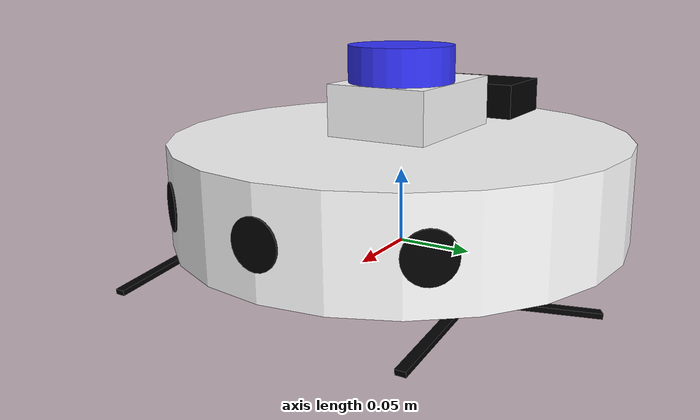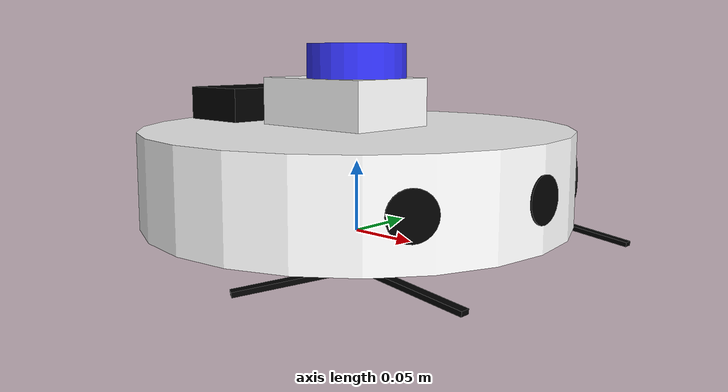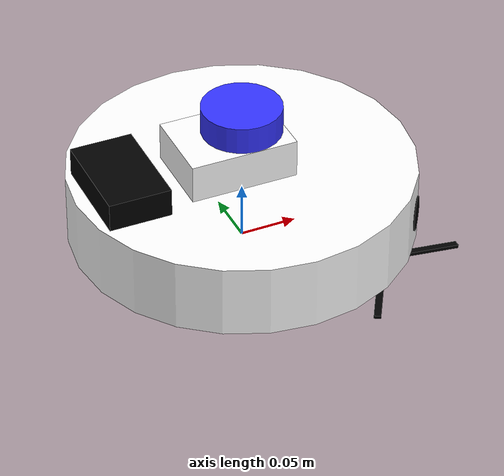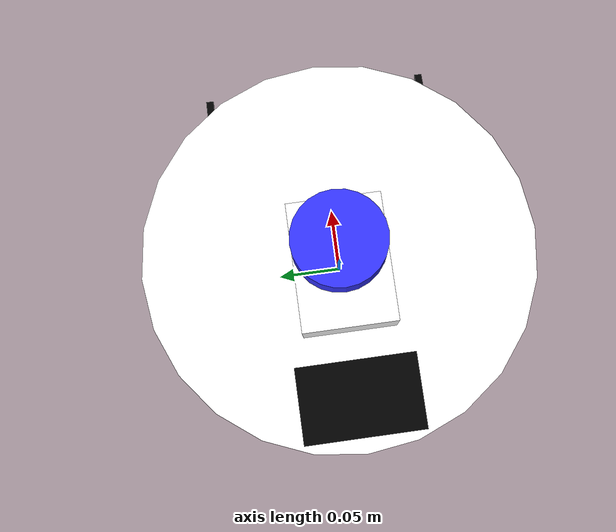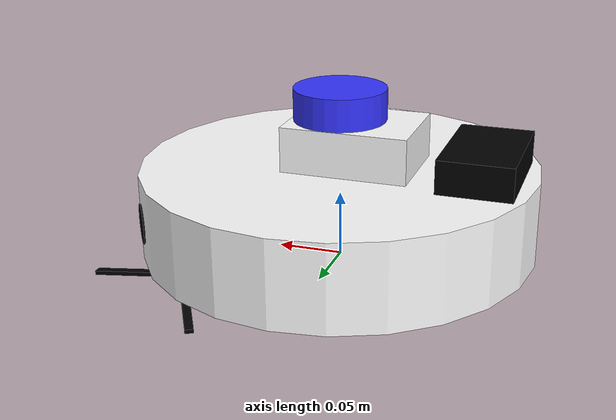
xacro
<?xml version="1.0"?>
<robot xmlns:xacro="http://www.ros.org/wiki/xacro"  name="robot">

    <!-- PARAMETERS -->
    <xacro:arg name="sim_mode" default="true"/>

    <!-- INCLUDES -->
    <xacro:include filename="inertial_macros.xacro"/>
    <xacro:include filename="materials.xacro"/>
    <xacro:include filename="robot_core.xacro"/>
    <xacro:include filename="sweeper.xacro"/>
    <xacro:include filename="range_sensors.xacro"/>
    <xacro:include filename="lidar.xacro"/>
    <xacro:include filename="raspberry_pi.xacro"/>
    <xacro:include filename="ros2_control.xacro"/>
    <xacro:include filename="gazebo.xacro"/>

</robot>

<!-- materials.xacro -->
<robot xmlns:xacro="http://www.ros.org/wiki/xacro">

    <material name="white">
        <color rgba="1 1 1 1" />
    </material>

    <material name="orange">
        <color rgba="1 0.3 0.1 1"/>
    </material>

    <material name="blue">
        <color rgba="0.2 0.2 1 1"/>
    </material>

    <material name="black">
        <color rgba="0 0 0 1"/>
    </material>

</robot>

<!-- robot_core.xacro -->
<robot xmlns:xacro="http://www.ros.org/wiki/xacro">

    <!-- BASE LINK -->
    <!-- defined on the ground in the center of the robot-->
    <link name="base_link"></link>

    <!-- BASE_FOOTPRINT LINK -->
    <joint name="base_footprint_joint" type="fixed">
        <parent link="base_link"/>
        <child link="base_footprint"/>
        <origin xyz="0 0 0" rpy="0 0 0"/>
    </joint>

    <link name="base_footprint">
    </link>

    <!-- CHASSIS LINK -->
    <xacro:property name="chassis_radius" value="0.150"/>
    <xacro:property name="chassis_thickness" value="0.065"/>
    <xacro:property name="chassis_mass" value="2.000"/>
    <xacro:property name="chassis_color" value="white"/>

    <xacro:property name="chassis_offset_z" value="0.0425"/>

    <joint name="chassis_joint" type="fixed">
        <parent link="base_link"/>
        <child link="chassis"/>
        <origin xyz="0 0 ${chassis_offset_z}"/>
    </joint>

    <link name="chassis">
        <visual>
            <origin xyz="0 0 0"/>
            <geometry>
                <cylinder radius="${chassis_radius}" length="${chassis_thickness}"/>
            </geometry>
            <material name="${chassis_color}"/>
        </visual>
        <collision>
            <origin xyz="0 0 0"/>
            <geometry>
                <cylinder radius="${chassis_radius}" length="${chassis_thickness}"/>
            </geometry>
        </collision>
        <xacro:inertial_cylinder mass="${chassis_mass}" radius="${chassis_radius}" length="${chassis_thickness}">
            <origin xyz="0.01 0 0" rpy="0 0 0"/>
        </xacro:inertial_cylinder>
    </link>

    <!-- LEFT WHEEL LINK -->
    <xacro:property name="wheel_radius" value="0.0325"/>
    <xacro:property name="wheel_thickness" value="0.015"/>
    <xacro:property name="wheel_mass" value="0.030"/>
    <xacro:property name="wheel_color" value="black"/>

    <xacro:property name="wheel_offset_x" value="0"/>
    <xacro:property name="wheel_separation" value="0.231"/>

    <joint name="wheel_left_joint" type="continuous">
        <parent link="base_link"/>
        <child link="wheel_left"/>
        <origin xyz="${wheel_offset_x} ${wheel_separation/2} ${wheel_radius}" rpy="-${pi/2} 0 0" />
        <axis xyz="0 0 1"/>
    </joint>

    <link name="wheel_left">
        <visual>
            <geometry>
                <cylinder radius="${wheel_radius}" length="${wheel_thickness}"/>
            </geometry>
            <material name="${wheel_color}"/>
        </visual>
        <collision>
            <geometry>
                <cylinder radius="${wheel_radius}" length="${wheel_thickness}"/>
            </geometry>
        </collision>
        <xacro:inertial_cylinder mass="${wheel_mass}" radius="${wheel_radius}" length="${wheel_thickness}">
            <origin xyz="0 0 0" rpy="0 0 0"/>
        </xacro:inertial_cylinder>
    </link>

    <!-- RIGHT WHEEL LINK -->
    <joint name="wheel_right_joint" type="continuous">
        <parent link="base_link"/>
        <child link="wheel_right"/>
        <origin xyz="${wheel_offset_x} ${-wheel_separation/2} ${wheel_radius}" rpy="${pi/2} 0 0" />
        <axis xyz="0 0 -1"/>
    </joint>

    <link name="wheel_right">
        <visual>
            <geometry>
                <cylinder radius="${wheel_radius}" length="${wheel_thickness}"/>
            </geometry>
            <material name="${wheel_color}"/>
        </visual>
        <collision>
            <geometry>
                <cylinder radius="${wheel_radius}" length="${wheel_thickness}"/>
            </geometry>
        </collision>
        <xacro:inertial_cylinder mass="${wheel_mass}" radius="${wheel_radius}" length="${wheel_thickness}">
            <origin xyz="0 0 0" rpy="0 0 0"/>
        </xacro:inertial_cylinder>
    </link>

    <!-- CASTER WHEEL PLATE LINK -->
    <xacro:property name="caster_wheel_plate_radius" value="0.025"/>
    <xacro:property name="caster_wheel_plate_thickness" value="0.0001"/>
    <xacro:property name="caster_wheel_plate_mass" value="0.005"/>
    <xacro:property name="caster_wheel_plate_color" value="blue"/>

    <xacro:property name="caster_wheel_plate_offset_x" value="0.1"/>

    <joint name="caster_wheel_plate_joint" type="fixed">0
        <parent link="chassis"/>
        <child link="caster_wheel_plate"/>
        <origin xyz="${caster_wheel_plate_offset_x} 0 ${-chassis_thickness/2}"/>
        <axis xyz="0 0 -1"/>
    </joint>

    <link name="caster_wheel_plate">
        <visual>
            <origin xyz="0 0 ${-caster_wheel_plate_thickness/2}"/>
            <geometry>
                <cylinder radius="${caster_wheel_plate_radius}" length="${caster_wheel_plate_thickness}"/>
            </geometry>
            <material name="${caster_wheel_plate_color}"/>
        </visual>
        <collision>
            <geometry>
                <cylinder radius="${caster_wheel_plate_radius}" length="${caster_wheel_plate_thickness}"/>
            </geometry>
        </collision>
        <xacro:inertial_cylinder mass="${caster_wheel_plate_mass}" radius="${caster_wheel_plate_radius}" length="${caster_wheel_plate_thickness}">
            <origin xyz="0 0 0" rpy="0 0 0"/>
        </xacro:inertial_cylinder>
    </link>

    <!-- CASTER WHEEL LINK -->
    <xacro:property name="caster_wheel_radius" value="0.010"/>
    <xacro:property name="caster_wheel_thickness" value="0.020"/>
    <xacro:property name="caster_wheel_mass" value="0.015"/>
    <xacro:property name="caster_wheel_color" value="blue"/>

    <xacro:property name="caster_wheel_offset_x" value="0.008"/>

    <joint name="caster_wheel_joint" type="fixed">
        <parent link="caster_wheel_plate"/>
        <child link="caster_wheel"/>
        <origin xyz="${caster_wheel_offset_x} 0 0" rpy="${pi/2}  0 0" />
        <axis xyz="0 0 -1"/>
    </joint>

    <link name="caster_wheel">
        <visual>
            <geometry>
                <cylinder radius="${caster_wheel_radius}" length="${caster_wheel_thickness}"/>
            </geometry>
            <material name="${caster_wheel_color}"/>
        </visual>
        <collision>
            <geometry>
                <cylinder radius="${caster_wheel_radius}" length="${caster_wheel_thickness}"/>
            </geometry>
        </collision>
        <xacro:inertial_cylinder mass="${caster_wheel_mass}" radius="${caster_wheel_radius}" length="${caster_wheel_thickness}">
            <origin xyz="0 0 0" rpy="0 0 0"/>
        </xacro:inertial_cylinder>
    </link>

</robot>

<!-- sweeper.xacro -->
<robot xmlns:xacro="http://www.ros.org/wiki/xacro">

    <!-- SWEEPER LEFT LINK -->
    <xacro:property name="sweeper_plate_radius" value="0.0125"/>
    <xacro:property name="sweeper_plate_thickness" value="0.0001"/>
    <xacro:property name="sweeper_plate_mass" value="0.0055"/>
    <xacro:property name="sweeper_brush_length" value="0.071"/>
    <xacro:property name="sweeper_brush_width" value="0.006"/>
    <xacro:property name="sweeper_brush_height" value="0.003"/>
    <xacro:property name="sweeper_brush_angle" value="7"/>
    <xacro:property name="sweeper_brush_mass" value="0.0055"/>
    <xacro:property name="sweeper_color" value="black"/>

    <xacro:property name="sweeper_offset_x" value="0.09"/>
    <xacro:property name="sweeper_separation" value="0.1825"/>

    <joint name="sweeper_left_joint" type="continuous">
        <parent link="chassis"/>
        <child link="sweeper_left"/>
        <origin xyz="${sweeper_offset_x} ${sweeper_separation/2} ${-chassis_thickness/2 - sweeper_plate_thickness/2}"/>
        <axis xyz="0 0 -1"/>
    </joint>

    <link name="sweeper_left">
        <visual>
            <geometry>
                <cylinder radius="${sweeper_plate_radius}" length="${sweeper_plate_thickness}"/>
            </geometry>
            <material name="${sweeper_color}"/>
        </visual>
        <visual>
            <origin xyz="${sweeper_brush_length/2 * cos( 0 )}
                         ${sweeper_brush_length/2 * sin( 0 )}
                         ${-(sweeper_brush_length/2 * sin(radians( sweeper_brush_angle )))}"
                    rpy="0
                         ${radians( sweeper_brush_angle )}
                         0" />
            <geometry>
                <box size="${sweeper_brush_length} ${sweeper_brush_width} ${sweeper_brush_height}"/>
            </geometry>
            <material name="${sweeper_color}"/>
        </visual>
        <visual>
            <origin xyz="${sweeper_brush_length/2 * cos( 2/3 * pi )}
                         ${sweeper_brush_length/2 * sin( 2/3 * pi )}
                         ${-(sweeper_brush_length/2 * sin(radians( sweeper_brush_angle )))}"
                    rpy="0
                         ${radians( sweeper_brush_angle )}
                         ${ 2/3 * pi }" />
            <geometry>
                <box size="${sweeper_brush_length} ${sweeper_brush_width} ${sweeper_brush_height}"/>
            </geometry>
            <material name="${sweeper_color}"/>
        </visual>
        <visual>
            <origin xyz="${sweeper_brush_length/2 * cos( -2/3 * pi )}
                         ${sweeper_brush_length/2 * sin( -2/3 * pi )}
                         ${-(sweeper_brush_length/2 * sin(radians( sweeper_brush_angle )))}"
                    rpy="0
                         ${radians( sweeper_brush_angle )}
                         ${ -2/3 * pi }" />
            <geometry>
                <box size="${sweeper_brush_length} ${sweeper_brush_width} ${sweeper_brush_height}"/>
            </geometry>
            <material name="${sweeper_color}"/>
        </visual>
        <xacro:inertial_cylinder mass="${sweeper_brush_mass}" radius="${sweeper_plate_radius}" length="${sweeper_plate_thickness}">
            <origin xyz="0 0 0" rpy="0 0 0"/>
        </xacro:inertial_cylinder>
    </link>

    <!-- SWEEPER RIGHT LINK -->
    <joint name="sweeper_right_joint" type="continuous">
        <parent link="chassis"/>
        <child link="sweeper_right"/>
        <origin xyz="${sweeper_offset_x} -${sweeper_separation/2} ${-chassis_thickness/2 - sweeper_plate_thickness/2}"/>
        <axis xyz="0 0 -1"/>
    </joint>

    <link name="sweeper_right">
        <visual>
            <geometry>
                <cylinder radius="${sweeper_plate_radius}" length="${sweeper_plate_thickness}"/>
            </geometry>
            <material name="${sweeper_color}"/>
        </visual>
        <visual>
            <origin xyz="${sweeper_brush_length/2 * cos( 0 )}
                         ${sweeper_brush_length/2 * sin( 0 )}
                         ${-(sweeper_brush_length/2 * sin(radians( sweeper_brush_angle )))}"
                    rpy="0
                         ${radians( sweeper_brush_angle )}
                         0" />
            <geometry>
                <box size="${sweeper_brush_length} ${sweeper_brush_width} ${sweeper_brush_height}"/>
            </geometry>
            <material name="${sweeper_color}"/>
        </visual>
        <visual>
            <origin xyz="${sweeper_brush_length/2 * cos( 2/3 * pi )}
                         ${sweeper_brush_length/2 * sin( 2/3 * pi )}
                         ${-(sweeper_brush_length/2 * sin(radians( sweeper_brush_angle )))}"
                    rpy="0
                         ${radians( sweeper_brush_angle )}
                         ${ 2/3 * pi }" />
            <geometry>
                <box size="${sweeper_brush_length} ${sweeper_brush_width} ${sweeper_brush_height}"/>
            </geometry>
            <material name="${sweeper_color}"/>
        </visual>
        <visual>
            <origin xyz="${sweeper_brush_length/2 * cos( -2/3 * pi )}
                         ${sweeper_brush_length/2 * sin( -2/3 * pi )}
                         ${-(sweeper_brush_length/2 * sin(radians( sweeper_brush_angle )))}"
                    rpy="0
                         ${radians( sweeper_brush_angle )}
                         ${ -2/3 * pi }" />
            <geometry>
                <box size="${sweeper_brush_length} ${sweeper_brush_width} ${sweeper_brush_height}"/>
            </geometry>
            <material name="${sweeper_color}"/>
        </visual>
        <xacro:inertial_cylinder mass="${sweeper_brush_mass}" radius="${sweeper_plate_radius}" length="${sweeper_plate_thickness}">
            <origin xyz="0 0 0" rpy="0 0 0"/>
        </xacro:inertial_cylinder>
    </link>

</robot>

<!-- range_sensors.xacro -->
<robot xmlns:xacro="http://www.ros.org/wiki/xacro">

    <xacro:property name="range_sensor_radius" value="0.015"/>
    <xacro:property name="range_sensor_thickness" value="0.001"/>
    <xacro:property name="range_sensor_mass" value="0.1"/>
    <xacro:property name="range_sensor_color" value="black"/>

    <!-- RANGE SENSOR LEFT LINK -->

    <xacro:property name="range_sensor_left_angle" value="35"/>

    <joint name="range_sensor_left_joint" type="fixed">
        <parent link="chassis"/>
        <child link="range_sensor_left"/>
        <origin xyz="${chassis_radius * cos( radians( range_sensor_left_angle ) )}
                     ${chassis_radius * sin( radians( range_sensor_left_angle ) )}
                     0"
                rpy="0 0 ${radians( range_sensor_left_angle )}"/>
    </joint>

    <link name="range_sensor_left">
        <visual>
            <origin xyz="0 0 0" rpy="0 -${pi/2} 0"/>
            <geometry>
                <cylinder radius="${range_sensor_radius}" length="${range_sensor_thickness}"/>
            </geometry>
            <material name="${range_sensor_color}"/>
        </visual>
    </link>

    <!-- RANGE SENSOR FRONT LINK -->

    <xacro:property name="range_sensor_front_angle" value="0"/>

    <joint name="range_sensor_front_joint" type="fixed">
        <parent link="chassis"/>
        <child link="range_sensor_front"/>
        <origin xyz="${chassis_radius * cos( radians( range_sensor_front_angle ) )}
                     ${chassis_radius * sin( radians( range_sensor_front_angle ) )}
                     0"
                rpy="0 0 ${radians( range_sensor_front_angle )}"/>
    </joint>

    <link name="range_sensor_front">
        <visual>
            <origin xyz="0 0 0" rpy="0 -${pi/2} 0"/>
            <geometry>
                <cylinder radius="${range_sensor_radius}" length="${range_sensor_thickness}"/>
            </geometry>
            <material name="${range_sensor_color}"/>
        </visual>
    </link>

    <!-- RANGE SENSOR RIGHT LINK -->

    <xacro:property name="range_sensor_right_angle" value="-35"/>

    <joint name="range_sensor_right_joint" type="fixed">
        <parent link="chassis"/>
        <child link="range_sensor_right"/>
        <origin xyz="${chassis_radius * cos( radians( range_sensor_right_angle ) )}
                     ${chassis_radius * sin( radians( range_sensor_right_angle ) )}
                     0"
                rpy="0 0 ${radians( range_sensor_right_angle )}"/>
    </joint>

    <link name="range_sensor_right">
        <visual>
            <origin xyz="0 0 0" rpy="0 -${pi/2} 0"/>
            <geometry>
                <cylinder radius="${range_sensor_radius}" length="${range_sensor_thickness}"/>
            </geometry>
            <material name="${range_sensor_color}"/>
        </visual>
    </link>

</robot>

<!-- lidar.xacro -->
<robot xmlns:xacro="http://www.ros.org/wiki/xacro" >

    <xacro:property name="lidar_radius" value="0.035"/>
    <xacro:property name="lidar_thickness" value="0.024"/>
    <xacro:property name="lidar_mass" value="0.170"/>
    <xacro:property name="lidar_color" value="blue"/>

    <xacro:property name="lidar_offset_z" value="0.046 "/>

    <xacro:property name="lidar_bracket_length" value="0.095"/>
    <xacro:property name="lidar_bracket_width" value="0.070"/>
    <xacro:property name="lidar_bracket_height" value="0.034"/>
    <xacro:property name="lidar_bracket_mass" value="0.260"/>
    <xacro:property name="lidar_bracket_color" value="white"/>

    <xacro:arg name="test" default="true"/>

    <!--  REAL ROBOT -->
    <xacro:unless value="$(arg test)">

        <!-- LIDAR -->
        <joint name="lidar_joint" type="fixed">
            <parent link="chassis"/>
            <child link="lidar_frame"/>
            <origin xyz="0 0 ${chassis_thickness/2 + lidar_offset_z}" rpy="0 0 ${pi}"/>
        </joint>

        <link name="lidar_frame">
            <visual>
                <origin xyz="0.013 0 -0.039" rpy="0 0 0"/>
                <geometry>
                    <mesh filename="package://vacuum_cleaner/description/mashes/RP-lidar-A1.stl" scale="0.001 0.001 0.001"/>
                </geometry>
                <material name="${lidar_color}"/>
            </visual>
            <collision>
                <origin xyz="0.013 0 -0.039" rpy="0 0 0"/>
                <geometry>
                    <mesh filename="package://vacuum_cleaner/description/mashes/RP-lidar-A1.stl" scale="0.001 0.001 0.001"/>
                </geometry>
            </collision>
            <xacro:inertial_cylinder mass="${lidar_mass}" radius="${lidar_radius}" length="${lidar_thickness}">
                <origin xyz="0 0 0" rpy="0 0 0"/>
            </xacro:inertial_cylinder>
        </link>

        <!-- BRACKET -->
        <joint name="lidar_bracket_joint" type="fixed">
            <parent link="chassis"/>
            <child link="lidar_bracket"/>
            <origin xyz="0 0 ${chassis_thickness/2}" rpy="0 0 0"/>
        </joint>

        <link name="lidar_bracket">
            <visual>
                <origin xyz="-0.0135 0 0" rpy="0 0 ${pi}"/>
                <geometry>
                    <mesh filename="package://vacuum_cleaner/description/mashes/Bracket.stl" scale="0.001 0.001 0.001"/>
                </geometry>
                <material name="${lidar_bracket_color}"/>
            </visual>
            <collision>
                <origin xyz="-0.0135 0 0" rpy="0 0 ${pi}"/>
                <geometry>
                    <mesh filename="package://vacuum_cleaner/description/mashes/Bracket.stl" scale="0.001 0.001 0.001"/>
                </geometry>
            </collision>
            <xacro:inertial_box mass="${lidar_bracket_mass}" x="${lidar_bracket_length}" y="${lidar_bracket_width}" z="${lidar_bracket_height}">
                <origin xyz="-0.0135 0 ${lidar_bracket_height/2}" rpy="0 0 ${pi}"/>
            </xacro:inertial_box>
        </link>

    </xacro:unless>

    <!-- SIMULATION -->
    <xacro:if value="$(arg test)">

        <!-- LIDAR -->
        <joint name="lidar_joint" type="fixed">
            <parent link="chassis"/>
            <child link="lidar_frame"/>
            <origin xyz="0 0 ${chassis_thickness/2 + lidar_offset_z}" rpy="0 0 0"/>
        </joint>

        <link name="lidar_frame">
            <visual>
                <geometry>
                    <cylinder radius="${lidar_radius}" length="${lidar_thickness}"/>
                </geometry>
                <material name="${lidar_color}"/>
            </visual>
            <collision>
                <geometry>
                    <cylinder radius="${lidar_radius}" length="${lidar_thickness}"/>
                </geometry>
            </collision>
            <xacro:inertial_cylinder mass="${lidar_mass}" radius="${lidar_radius}" length="${lidar_thickness}">
                <origin xyz="0 0 0" rpy="0 0 0"/>
            </xacro:inertial_cylinder>
        </link>

        <!-- BRACKET -->
        <joint name="lidar_bracket_joint" type="fixed">
            <parent link="chassis"/>
            <child link="lidar_bracket"/>
            <origin xyz="${-(lidar_bracket_length/2 - lidar_radius)} 0 ${chassis_thickness/2 + lidar_bracket_height/2}" rpy="0 0 0"/>
        </joint>

        <link name="lidar_bracket">
            <visual>
                <geometry>
                    <box size="${lidar_bracket_length} ${lidar_bracket_width} ${lidar_bracket_height}"/>
                </geometry>
                <material name="${lidar_bracket_color}"/>
            </visual>
            <collision>
                <geometry>
                    <box size="${lidar_bracket_length} ${lidar_bracket_width} ${lidar_bracket_height}"/>
                </geometry>
            </collision>
            <xacro:inertial_box mass="${lidar_bracket_mass}" x="${lidar_bracket_length}" y="${lidar_bracket_width}" z="${lidar_bracket_height}">
                <origin xyz="0 0 0" rpy="0 0 0"/>
            </xacro:inertial_box>
        </link>

    </xacro:if>
</robot>

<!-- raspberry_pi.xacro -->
<robot xmlns:xacro="http://www.ros.org/wiki/xacro">

    <!-- RASPBERRY PI -->
    <xacro:property name="raspberry_pi_length" value="0.088"/>
    <xacro:property name="raspberry_pi_width" value="0.055"/>
    <xacro:property name="raspberry_pi_height" value="0.025"/>
    <xacro:property name="raspberry_pi_mass" value="0.140"/>
    <xacro:property name="raspberry_pi_color" value="black"/>

    <xacro:property name="raspberry_pi_offset_x" value="0.11 "/>

    <joint name="raspberry_pi_joint" type="fixed">
        <parent link="chassis"/>
        <child link="raspberry_pi"/>
        <origin xyz="${-raspberry_pi_offset_x} 0 ${raspberry_pi_height/2 + chassis_thickness/2}" rpy="0 0 0"/>
    </joint>

    <link name="raspberry_pi">
        <visual>
            <origin xyz="0 0 0" rpy="0 0 ${pi/2}"/>
            <geometry>
                <box size="${raspberry_pi_length} ${raspberry_pi_width} ${raspberry_pi_height}"/>
            </geometry>
            <material name="${raspberry_pi_color}"/>
        </visual>
        <collision>
            <origin xyz="0 0 0" rpy="0 0 ${pi/2}"/>
            <geometry>
                <box size="${raspberry_pi_length} ${raspberry_pi_width} ${raspberry_pi_height}"/>
            </geometry>
        </collision>
        <xacro:inertial_box mass="${raspberry_pi_mass}" x="${raspberry_pi_length}" y="${raspberry_pi_width}" z="${raspberry_pi_height}">
            <origin xyz="0 0 0" rpy="0 0 ${pi/2}"/>
        </xacro:inertial_box>
    </link>

</robot>
